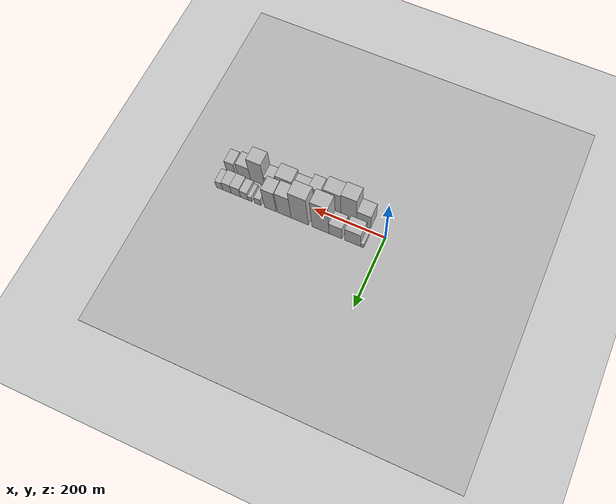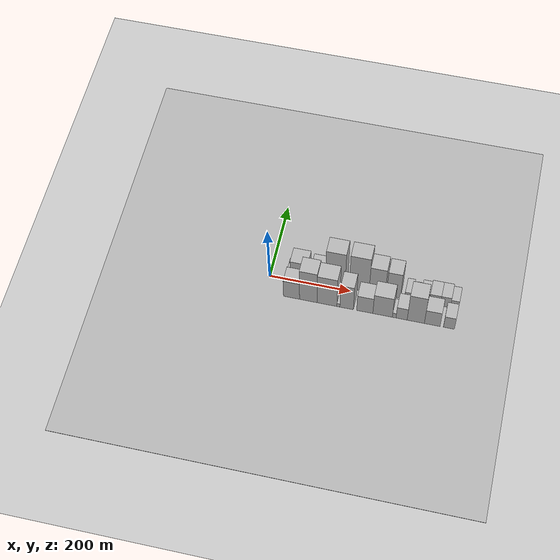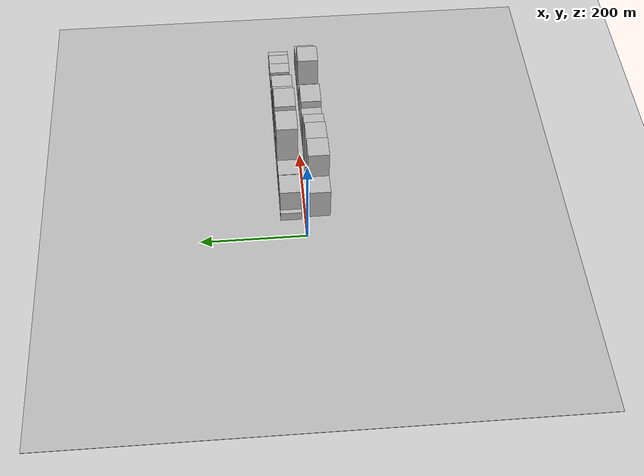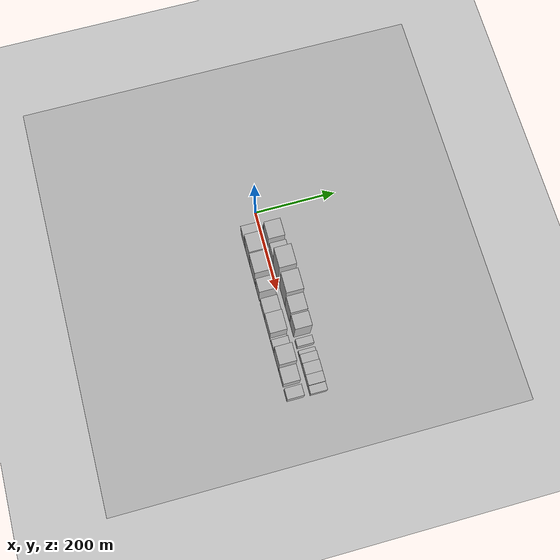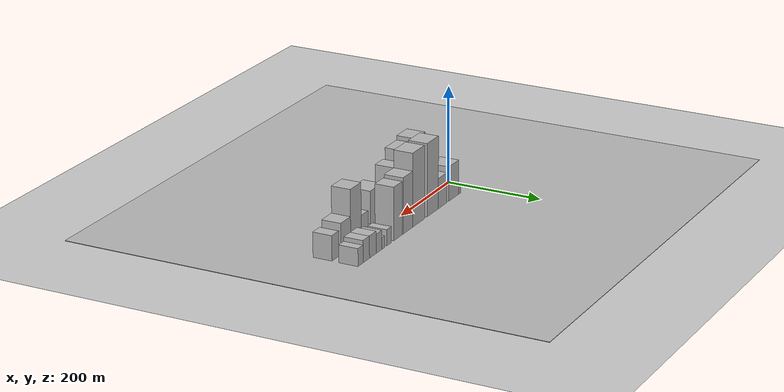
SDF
<?xml version="1.0" encoding="utf-8"?>

<sdf version="1.6">

   <world name="default">

      <gui fullscreen="0">

         <camera name="user_camera">

            <pose>-15 0 4.57585 0 0 0</pose>

            <view_controller>orbit</view_controller>

         </camera>

      </gui>

      <scene>

         <sky>

           <clouds>

             <speed>12</speed>

           </clouds>

         </sky>

         <ambient>0.4 0.4 0.4 1</ambient>

         <background>0.7 0.7 0.7 1</background>

         <shadows>1</shadows>

      </scene>

      <gravity>0 0 -9.8066</gravity>

      <magnetic_field>6e-06 2.3e-05 -4.2e-05</magnetic_field>

      <physics default="0" name="default_physics" type="ode">

         <ode>

            <solver>

               <type>quick</type>

               <iters>10</iters>

               <sor>1.0</sor>

               <use_dynamic_moi_rescaling>0</use_dynamic_moi_rescaling>

            </solver>

            <constraints>

               <cfm>0</cfm>

               <erp>0.2</erp>

               <contact_max_correcting_vel>100</contact_max_correcting_vel>

               <contact_surface_layer>0.001</contact_surface_layer>

            </constraints>

         </ode>

         <max_step_size>0.004</max_step_size>

         <real_time_factor>1</real_time_factor>

         <real_time_update_rate>250</real_time_update_rate>

      </physics>

      <light name="sun" type="directional">

         <cast_shadows>1</cast_shadows>

         <pose>0 0 10 0 0 0</pose>

         <diffuse>0.8 0.8 0.8 1</diffuse>

         <specular>0.2 0.2 0.2 1</specular>

         <attenuation>

            <range>1000</range>

            <constant>0.9</constant>

            <linear>0.01</linear>

            <quadratic>0.001</quadratic>

         </attenuation>

         <direction>-0.5 0.1 -0.9</direction>

      </light>

      <include>

         <name>ground_plane_1</name>

         <uri>model://HANNAS_ground_plane</uri>

         <pose>0 0 0  0 0 0</pose>

      </include>

      <include>

         <name>ground_plane_2</name>

         <uri>model://HANNAS_ground_plane</uri>

         <pose>100 0 0  0 0 0</pose>

      </include>

      <model name="building_1">

         <static>1</static>

         <pose frame="">44.5452 27.5000 0 0.000000 0.000000 1.570796</pose>

         <link name="link">

            <pose frame="">0 0 10.50 0 0 0</pose>

            <collision name="collision">

               <geometry>

                  <box>

                     <size>40.0000 9.0904 21.0000</size>

                  </box>

               </geometry>

               <max_contacts>10</max_contacts>

               <surface>

                  <contact>

                     <ode/>

                  </contact>

                  <bounce/>

                  <friction>

                     <torsional>

                        <ode/>

                     </torsional>

                     <ode/>

                  </friction>

               </surface>

            </collision>

            <visual name="visual">

               <cast_shadows>0</cast_shadows>

               <geometry>

                  <box>

                     <size>40.0000 9.0904 21.0000</size>

                  </box>

               </geometry>

               <material>

                  <script>

                     <uri>model://HANNAS_wall/materials/scripts</uri>

                     <uri>model://HANNAS_wall/materials/textures</uri>

                     <name>vrc/HANNAS_wall</name>

                  </script>

               </material>

            </visual>

            <self_collide>0</self_collide>

            <enable_wind>0</enable_wind>

            <kinematic>0</kinematic>

         </link>

      </model>

      <model name="building_2">

         <static>1</static>

         <pose frame="">70.5771 27.5000 0 0.000000 0.000000 1.570796</pose>

         <link name="link">

            <pose frame="">0 0 36.00 0 0 0</pose>

            <collision name="collision">

               <geometry>

                  <box>

                     <size>40.0000 42.9735 72.0000</size>

                  </box>

               </geometry>

               <max_contacts>10</max_contacts>

               <surface>

                  <contact>

                     <ode/>

                  </contact>

                  <bounce/>

                  <friction>

                     <torsional>

                        <ode/>

                     </torsional>

                     <ode/>

                  </friction>

               </surface>

            </collision>

            <visual name="visual">

               <cast_shadows>0</cast_shadows>

               <geometry>

                  <box>

                     <size>40.0000 42.9735 72.0000</size>

                  </box>

               </geometry>

               <material>

                  <script>

                     <uri>model://HANNAS_wall/materials/scripts</uri>

                     <uri>model://HANNAS_wall/materials/textures</uri>

                     <name>vrc/HANNAS_wall</name>

                  </script>

               </material>

            </visual>

            <self_collide>0</self_collide>

            <enable_wind>0</enable_wind>

            <kinematic>0</kinematic>

         </link>

      </model>

      <model name="building_3">

         <static>1</static>

         <pose frame="">118.1432 27.5000 0 0.000000 0.000000 1.570796</pose>

         <link name="link">

            <pose frame="">0 0 31.50 0 0 0</pose>

            <collision name="collision">

               <geometry>

                  <box>

                     <size>40.0000 36.1587 63.0000</size>

                  </box>

               </geometry>

               <max_contacts>10</max_contacts>

               <surface>

                  <contact>

                     <ode/>

                  </contact>

                  <bounce/>

                  <friction>

                     <torsional>

                        <ode/>

                     </torsional>

                     <ode/>

                  </friction>

               </surface>

            </collision>

            <visual name="visual">

               <cast_shadows>0</cast_shadows>

               <geometry>

                  <box>

                     <size>40.0000 36.1587 63.0000</size>

                  </box>

               </geometry>

               <material>

                  <script>

                     <uri>model://HANNAS_wall/materials/scripts</uri>

                     <uri>model://HANNAS_wall/materials/textures</uri>

                     <name>vrc/HANNAS_wall</name>

                  </script>

               </material>

            </visual>

            <self_collide>0</self_collide>

            <enable_wind>0</enable_wind>

            <kinematic>0</kinematic>

         </link>

      </model>

      <model name="building_4">

         <static>1</static>

         <pose frame="">160.0432 27.5000 0 0.000000 0.000000 1.570796</pose>

         <link name="link">

            <pose frame="">0 0 75.00 0 0 0</pose>

            <collision name="collision">

               <geometry>

                  <box>

                     <size>40.0000 47.6412 150.0000</size>

                  </box>

               </geometry>

               <max_contacts>10</max_contacts>

               <surface>

                  <contact>

                     <ode/>

                  </contact>

                  <bounce/>

                  <friction>

                     <torsional>

                        <ode/>

                     </torsional>

                     <ode/>

                  </friction>

               </surface>

            </collision>

            <visual name="visual">

               <cast_shadows>0</cast_shadows>

               <geometry>

                  <box>

                     <size>40.0000 47.6412 150.0000</size>

                  </box>

               </geometry>

               <material>

                  <script>

                     <uri>model://HANNAS_wall/materials/scripts</uri>

                     <uri>model://HANNAS_wall/materials/textures</uri>

                     <name>vrc/HANNAS_wall</name>

                  </script>

               </material>

            </visual>

            <self_collide>0</self_collide>

            <enable_wind>0</enable_wind>

            <kinematic>0</kinematic>

         </link>

      </model>

      <model name="building_5">

         <static>1</static>

         <pose frame="">218.1192 27.5000 0 0.000000 0.000000 1.570796</pose>

         <link name="link">

            <pose frame="">0 0 75.00 0 0 0</pose>

            <collision name="collision">

               <geometry>

                  <box>

                     <size>40.0000 48.5108 150.0000</size>

                  </box>

               </geometry>

               <max_contacts>10</max_contacts>

               <surface>

                  <contact>

                     <ode/>

                  </contact>

                  <bounce/>

                  <friction>

                     <torsional>

                        <ode/>

                     </torsional>

                     <ode/>

                  </friction>

               </surface>

            </collision>

            <visual name="visual">

               <cast_shadows>0</cast_shadows>

               <geometry>

                  <box>

                     <size>40.0000 48.5108 150.0000</size>

                  </box>

               </geometry>

               <material>

                  <script>

                     <uri>model://HANNAS_wall/materials/scripts</uri>

                     <uri>model://HANNAS_wall/materials/textures</uri>

                     <name>vrc/HANNAS_wall</name>

                  </script>

               </material>

            </visual>

            <self_collide>0</self_collide>

            <enable_wind>0</enable_wind>

            <kinematic>0</kinematic>

         </link>

      </model>

      <model name="building_6">

         <static>1</static>

         <pose frame="">262.0023 27.5000 0 0.000000 0.000000 1.570796</pose>

         <link name="link">

            <pose frame="">0 0 57.00 0 0 0</pose>

            <collision name="collision">

               <geometry>

                  <box>

                     <size>40.0000 39.2553 114.0000</size>

                  </box>

               </geometry>

               <max_contacts>10</max_contacts>

               <surface>

                  <contact>

                     <ode/>

                  </contact>

                  <bounce/>

                  <friction>

                     <torsional>

                        <ode/>

                     </torsional>

                     <ode/>

                  </friction>

               </surface>

            </collision>

            <visual name="visual">

               <cast_shadows>0</cast_shadows>

               <geometry>

                  <box>

                     <size>40.0000 39.2553 114.0000</size>

                  </box>

               </geometry>

               <material>

                  <script>

                     <uri>model://HANNAS_wall/materials/scripts</uri>

                     <uri>model://HANNAS_wall/materials/textures</uri>

                     <name>vrc/HANNAS_wall</name>

                  </script>

               </material>

            </visual>

            <self_collide>0</self_collide>

            <enable_wind>0</enable_wind>

            <kinematic>0</kinematic>

         </link>

      </model>

      <model name="building_7">

         <static>1</static>

         <pose frame="">301.5971 27.5000 0 0.000000 0.000000 1.570796</pose>

         <link name="link">

            <pose frame="">0 0 54.00 0 0 0</pose>

            <collision name="collision">

               <geometry>

                  <box>

                     <size>40.0000 33.9343 108.0000</size>

                  </box>

               </geometry>

               <max_contacts>10</max_contacts>

               <surface>

                  <contact>

                     <ode/>

                  </contact>

                  <bounce/>

                  <friction>

                     <torsional>

                        <ode/>

                     </torsional>

                     <ode/>

                  </friction>

               </surface>

            </collision>

            <visual name="visual">

               <cast_shadows>0</cast_shadows>

               <geometry>

                  <box>

                     <size>40.0000 33.9343 108.0000</size>

                  </box>

               </geometry>

               <material>

                  <script>

                     <uri>model://HANNAS_wall/materials/scripts</uri>

                     <uri>model://HANNAS_wall/materials/textures</uri>

                     <name>vrc/HANNAS_wall</name>

                  </script>

               </material>

            </visual>

            <self_collide>0</self_collide>

            <enable_wind>0</enable_wind>

            <kinematic>0</kinematic>

         </link>

      </model>

      <model name="building_8">

         <static>1</static>

         <pose frame="">337.7096 27.5000 0 0.000000 0.000000 1.570796</pose>

         <link name="link">

            <pose frame="">0 0 16.50 0 0 0</pose>

            <collision name="collision">

               <geometry>

                  <box>

                     <size>40.0000 18.2908 33.0000</size>

                  </box>

               </geometry>

               <max_contacts>10</max_contacts>

               <surface>

                  <contact>

                     <ode/>

                  </contact>

                  <bounce/>

                  <friction>

                     <torsional>

                        <ode/>

                     </torsional>

                     <ode/>

                  </friction>

               </surface>

            </collision>

            <visual name="visual">

               <cast_shadows>0</cast_shadows>

               <geometry>

                  <box>

                     <size>40.0000 18.2908 33.0000</size>

                  </box>

               </geometry>

               <material>

                  <script>

                     <uri>model://HANNAS_wall/materials/scripts</uri>

                     <uri>model://HANNAS_wall/materials/textures</uri>

                     <name>vrc/HANNAS_wall</name>

                  </script>

               </material>

            </visual>

            <self_collide>0</self_collide>

            <enable_wind>0</enable_wind>

            <kinematic>0</kinematic>

         </link>

      </model>

      <model name="building_9">

         <static>1</static>

         <pose frame="">360.4287 27.5000 0 0.000000 0.000000 1.570796</pose>

         <link name="link">

            <pose frame="">0 0 12.00 0 0 0</pose>

            <collision name="collision">

               <geometry>

                  <box>

                     <size>40.0000 11.1475 24.0000</size>

                  </box>

               </geometry>

               <max_contacts>10</max_contacts>

               <surface>

                  <contact>

                     <ode/>

                  </contact>

                  <bounce/>

                  <friction>

                     <torsional>

                        <ode/>

                     </torsional>

                     <ode/>

                  </friction>

               </surface>

            </collision>

            <visual name="visual">

               <cast_shadows>0</cast_shadows>

               <geometry>

                  <box>

                     <size>40.0000 11.1475 24.0000</size>

                  </box>

               </geometry>

               <material>

                  <script>

                     <uri>model://HANNAS_wall/materials/scripts</uri>

                     <uri>model://HANNAS_wall/materials/textures</uri>

                     <name>vrc/HANNAS_wall</name>

                  </script>

               </material>

            </visual>

            <self_collide>0</self_collide>

            <enable_wind>0</enable_wind>

            <kinematic>0</kinematic>

         </link>

      </model>

      <model name="building_10">

         <static>1</static>

         <pose frame="">376.8755 27.5000 0 0.000000 0.000000 1.570796</pose>

         <link name="link">

            <pose frame="">0 0 19.50 0 0 0</pose>

            <collision name="collision">

               <geometry>

                  <box>

                     <size>40.0000 21.7459 39.0000</size>

                  </box>

               </geometry>

               <max_contacts>10</max_contacts>

               <surface>

                  <contact>

                     <ode/>

                  </contact>

                  <bounce/>

                  <friction>

                     <torsional>

                        <ode/>

                     </torsional>

                     <ode/>

                  </friction>

               </surface>

            </collision>

            <visual name="visual">

               <cast_shadows>0</cast_shadows>

               <geometry>

                  <box>

                     <size>40.0000 21.7459 39.0000</size>

                  </box>

               </geometry>

               <material>

                  <script>

                     <uri>model://HANNAS_wall/materials/scripts</uri>

                     <uri>model://HANNAS_wall/materials/textures</uri>

                     <name>vrc/HANNAS_wall</name>

                  </script>

               </material>

            </visual>

            <self_collide>0</self_collide>

            <enable_wind>0</enable_wind>

            <kinematic>0</kinematic>

         </link>

      </model>

      <model name="building_11">

         <static>1</static>

         <pose frame="">401.1954 27.5000 0 0.000000 0.000000 1.570796</pose>

         <link name="link">

            <pose frame="">0 0 22.50 0 0 0</pose>

            <collision name="collision">

               <geometry>

                  <box>

                     <size>40.0000 26.8939 45.0000</size>

                  </box>

               </geometry>

               <max_contacts>10</max_contacts>

               <surface>

                  <contact>

                     <ode/>

                  </contact>

                  <bounce/>

                  <friction>

                     <torsional>

                        <ode/>

                     </torsional>

                     <ode/>

                  </friction>

               </surface>

            </collision>

            <visual name="visual">

               <cast_shadows>0</cast_shadows>

               <geometry>

                  <box>

                     <size>40.0000 26.8939 45.0000</size>

                  </box>

               </geometry>

               <material>

                  <script>

                     <uri>model://HANNAS_wall/materials/scripts</uri>

                     <uri>model://HANNAS_wall/materials/textures</uri>

                     <name>vrc/HANNAS_wall</name>

                  </script>

               </material>

            </visual>

            <self_collide>0</self_collide>

            <enable_wind>0</enable_wind>

            <kinematic>0</kinematic>

         </link>

      </model>

      <model name="building_12">

         <static>1</static>

         <pose frame="">426.8870 27.5000 0 0.000000 0.000000 1.570796</pose>

         <link name="link">

            <pose frame="">0 0 22.50 0 0 0</pose>

            <collision name="collision">

               <geometry>

                  <box>

                     <size>40.0000 24.4894 45.0000</size>

                  </box>

               </geometry>

               <max_contacts>10</max_contacts>

               <surface>

                  <contact>

                     <ode/>

                  </contact>

                  <bounce/>

                  <friction>

                     <torsional>

                        <ode/>

                     </torsional>

                     <ode/>

                  </friction>

               </surface>

            </collision>

            <visual name="visual">

               <cast_shadows>0</cast_shadows>

               <geometry>

                  <box>

                     <size>40.0000 24.4894 45.0000</size>

                  </box>

               </geometry>

               <material>

                  <script>

                     <uri>model://HANNAS_wall/materials/scripts</uri>

                     <uri>model://HANNAS_wall/materials/textures</uri>

                     <name>vrc/HANNAS_wall</name>

                  </script>

               </material>

            </visual>

            <self_collide>0</self_collide>

            <enable_wind>0</enable_wind>

            <kinematic>0</kinematic>

         </link>

      </model>

      <model name="building_13">

         <static>1</static>

         <pose frame="">448.7999 27.5000 0 0.000000 0.000000 1.570796</pose>

         <link name="link">

            <pose frame="">0 0 18.00 0 0 0</pose>

            <collision name="collision">

               <geometry>

                  <box>

                     <size>40.0000 19.3363 36.0000</size>

                  </box>

               </geometry>

               <max_contacts>10</max_contacts>

               <surface>

                  <contact>

                     <ode/>

                  </contact>

                  <bounce/>

                  <friction>

                     <torsional>

                        <ode/>

                     </torsional>

                     <ode/>

                  </friction>

               </surface>

            </collision>

            <visual name="visual">

               <cast_shadows>0</cast_shadows>

               <geometry>

                  <box>

                     <size>40.0000 19.3363 36.0000</size>

                  </box>

               </geometry>

               <material>

                  <script>

                     <uri>model://HANNAS_wall/materials/scripts</uri>

                     <uri>model://HANNAS_wall/materials/textures</uri>

                     <name>vrc/HANNAS_wall</name>

                  </script>

               </material>

            </visual>

            <self_collide>0</self_collide>

            <enable_wind>0</enable_wind>

            <kinematic>0</kinematic>

         </link>

      </model>

      <model name="building_14">

         <static>1</static>

         <pose frame="">64.6152 -27.5000 0 0.000000 0.000000 1.570796</pose>

         <link name="link">

            <pose frame="">0 0 36.00 0 0 0</pose>

            <collision name="collision">

               <geometry>

                  <box>

                     <size>40.0000 39.2304 72.0000</size>

                  </box>

               </geometry>

               <max_contacts>10</max_contacts>

               <surface>

                  <contact>

                     <ode/>

                  </contact>

                  <bounce/>

                  <friction>

                     <torsional>

                        <ode/>

                     </torsional>

                     <ode/>

                  </friction>

               </surface>

            </collision>

            <visual name="visual">

               <cast_shadows>0</cast_shadows>

               <geometry>

                  <box>

                     <size>40.0000 39.2304 72.0000</size>

                  </box>

               </geometry>

               <material>

                  <script>

                     <uri>model://HANNAS_wall/materials/scripts</uri>

                     <uri>model://HANNAS_wall/materials/textures</uri>

                     <name>vrc/HANNAS_wall</name>

                  </script>

               </material>

            </visual>

            <self_collide>0</self_collide>

            <enable_wind>0</enable_wind>

            <kinematic>0</kinematic>

         </link>

      </model>

      <model name="building_15">

         <static>1</static>

         <pose frame="">105.7762 -27.5000 0 0.000000 0.000000 1.570796</pose>

         <link name="link">

            <pose frame="">0 0 66.00 0 0 0</pose>

            <collision name="collision">

               <geometry>

                  <box>

                     <size>40.0000 43.0916 132.0000</size>

                  </box>

               </geometry>

               <max_contacts>10</max_contacts>

               <surface>

                  <contact>

                     <ode/>

                  </contact>

                  <bounce/>

                  <friction>

                     <torsional>

                        <ode/>

                     </torsional>

                     <ode/>

                  </friction>

               </surface>

            </collision>

            <visual name="visual">

               <cast_shadows>0</cast_shadows>

               <geometry>

                  <box>

                     <size>40.0000 43.0916 132.0000</size>

                  </box>

               </geometry>

               <material>

                  <script>

                     <uri>model://HANNAS_wall/materials/scripts</uri>

                     <uri>model://HANNAS_wall/materials/textures</uri>

                     <name>vrc/HANNAS_wall</name>

                  </script>

               </material>

            </visual>

            <self_collide>0</self_collide>

            <enable_wind>0</enable_wind>

            <kinematic>0</kinematic>

         </link>

      </model>

      <model name="building_16">

         <static>1</static>

         <pose frame="">151.2826 -27.5000 0 0.000000 0.000000 1.570796</pose>

         <link name="link">

            <pose frame="">0 0 61.50 0 0 0</pose>

            <collision name="collision">

               <geometry>

                  <box>

                     <size>40.0000 47.9210 123.0000</size>

                  </box>

               </geometry>

               <max_contacts>10</max_contacts>

               <surface>

                  <contact>

                     <ode/>

                  </contact>

                  <bounce/>

                  <friction>

                     <torsional>

                        <ode/>

                     </torsional>

                     <ode/>

                  </friction>

               </surface>

            </collision>

            <visual name="visual">

               <cast_shadows>0</cast_shadows>

               <geometry>

                  <box>

                     <size>40.0000 47.9210 123.0000</size>

                  </box>

               </geometry>

               <material>

                  <script>

                     <uri>model://HANNAS_wall/materials/scripts</uri>

                     <uri>model://HANNAS_wall/materials/textures</uri>

                     <name>vrc/HANNAS_wall</name>

                  </script>

               </material>

            </visual>

            <self_collide>0</self_collide>

            <enable_wind>0</enable_wind>

            <kinematic>0</kinematic>

         </link>

      </model>

      <model name="building_17">

         <static>1</static>

         <pose frame="">178.9516 -27.5000 0 0.000000 0.000000 1.570796</pose>

         <link name="link">

            <pose frame="">0 0 7.50 0 0 0</pose>

            <collision name="collision">

               <geometry>

                  <box>

                     <size>40.0000 7.4171 15.0000</size>

                  </box>

               </geometry>

               <max_contacts>10</max_contacts>

               <surface>

                  <contact>

                     <ode/>

                  </contact>

                  <bounce/>

                  <friction>

                     <torsional>

                        <ode/>

                     </torsional>

                     <ode/>

                  </friction>

               </surface>

            </collision>

            <visual name="visual">

               <cast_shadows>0</cast_shadows>

               <geometry>

                  <box>

                     <size>40.0000 7.4171 15.0000</size>

                  </box>

               </geometry>

               <material>

                  <script>

                     <uri>model://HANNAS_wall/materials/scripts</uri>

                     <uri>model://HANNAS_wall/materials/textures</uri>

                     <name>vrc/HANNAS_wall</name>

                  </script>

               </material>

            </visual>

            <self_collide>0</self_collide>

            <enable_wind>0</enable_wind>

            <kinematic>0</kinematic>

         </link>

      </model>

      <model name="building_18">

         <static>1</static>

         <pose frame="">198.9719 -27.5000 0 0.000000 0.000000 1.570796</pose>

         <link name="link">

            <pose frame="">0 0 51.00 0 0 0</pose>

            <collision name="collision">

               <geometry>

                  <box>

                     <size>40.0000 32.6235 102.0000</size>

                  </box>

               </geometry>

               <max_contacts>10</max_contacts>

               <surface>

                  <contact>

                     <ode/>

                  </contact>

                  <bounce/>

                  <friction>

                     <torsional>

                        <ode/>

                     </torsional>

                     <ode/>

                  </friction>

               </surface>

            </collision>

            <visual name="visual">

               <cast_shadows>0</cast_shadows>

               <geometry>

                  <box>

                     <size>40.0000 32.6235 102.0000</size>

                  </box>

               </geometry>

               <material>

                  <script>

                     <uri>model://HANNAS_wall/materials/scripts</uri>

                     <uri>model://HANNAS_wall/materials/textures</uri>

                     <name>vrc/HANNAS_wall</name>

                  </script>

               </material>

            </visual>

            <self_collide>0</self_collide>

            <enable_wind>0</enable_wind>

            <kinematic>0</kinematic>

         </link>

      </model>

      <model name="building_19">

         <static>1</static>

         <pose frame="">242.8367 -27.5000 0 0.000000 0.000000 1.570796</pose>

         <link name="link">

            <pose frame="">0 0 34.50 0 0 0</pose>

            <collision name="collision">

               <geometry>

                  <box>

                     <size>40.0000 39.1060 69.0000</size>

                  </box>

               </geometry>

               <max_contacts>10</max_contacts>

               <surface>

                  <contact>

                     <ode/>

                  </contact>

                  <bounce/>

                  <friction>

                     <torsional>

                        <ode/>

                     </torsional>

                     <ode/>

                  </friction>

               </surface>

            </collision>

            <visual name="visual">

               <cast_shadows>0</cast_shadows>

               <geometry>

                  <box>

                     <size>40.0000 39.1060 69.0000</size>

                  </box>

               </geometry>

               <material>

                  <script>

                     <uri>model://HANNAS_wall/materials/scripts</uri>

                     <uri>model://HANNAS_wall/materials/textures</uri>

                     <name>vrc/HANNAS_wall</name>

                  </script>

               </material>

            </visual>

            <self_collide>0</self_collide>

            <enable_wind>0</enable_wind>

            <kinematic>0</kinematic>

         </link>

      </model>

      <model name="building_20">

         <static>1</static>

         <pose frame="">285.9018 -27.5000 0 0.000000 0.000000 1.570796</pose>

         <link name="link">

            <pose frame="">0 0 43.50 0 0 0</pose>

            <collision name="collision">

               <geometry>

                  <box>

                     <size>40.0000 47.0242 87.0000</size>

                  </box>

               </geometry>

               <max_contacts>10</max_contacts>

               <surface>

                  <contact>

                     <ode/>

                  </contact>

                  <bounce/>

                  <friction>

                     <torsional>

                        <ode/>

                     </torsional>

                     <ode/>

                  </friction>

               </surface>

            </collision>

            <visual name="visual">

               <cast_shadows>0</cast_shadows>

               <geometry>

                  <box>

                     <size>40.0000 47.0242 87.0000</size>

                  </box>

               </geometry>

               <material>

                  <script>

                     <uri>model://HANNAS_wall/materials/scripts</uri>

                     <uri>model://HANNAS_wall/materials/textures</uri>

                     <name>vrc/HANNAS_wall</name>

                  </script>

               </material>

            </visual>

            <self_collide>0</self_collide>

            <enable_wind>0</enable_wind>

            <kinematic>0</kinematic>

         </link>

      </model>

      <model name="building_21">

         <static>1</static>

         <pose frame="">313.7958 -27.5000 0 0.000000 0.000000 1.570796</pose>

         <link name="link">

            <pose frame="">0 0 10.50 0 0 0</pose>

            <collision name="collision">

               <geometry>

                  <box>

                     <size>40.0000 8.7639 21.0000</size>

                  </box>

               </geometry>

               <max_contacts>10</max_contacts>

               <surface>

                  <contact>

                     <ode/>

                  </contact>

                  <bounce/>

                  <friction>

                     <torsional>

                        <ode/>

                     </torsional>

                     <ode/>

                  </friction>

               </surface>

            </collision>

            <visual name="visual">

               <cast_shadows>0</cast_shadows>

               <geometry>

                  <box>

                     <size>40.0000 8.7639 21.0000</size>

                  </box>

               </geometry>

               <material>

                  <script>

                     <uri>model://HANNAS_wall/materials/scripts</uri>

                     <uri>model://HANNAS_wall/materials/textures</uri>

                     <name>vrc/HANNAS_wall</name>

                  </script>

               </material>

            </visual>

            <self_collide>0</self_collide>

            <enable_wind>0</enable_wind>

            <kinematic>0</kinematic>

         </link>

      </model>

      <model name="building_22">

         <static>1</static>

         <pose frame="">331.5416 -27.5000 0 0.000000 0.000000 1.570796</pose>

         <link name="link">

            <pose frame="">0 0 25.50 0 0 0</pose>

            <collision name="collision">

               <geometry>

                  <box>

                     <size>40.0000 26.7277 51.0000</size>

                  </box>

               </geometry>

               <max_contacts>10</max_contacts>

               <surface>

                  <contact>

                     <ode/>

                  </contact>

                  <bounce/>

                  <friction>

                     <torsional>

                        <ode/>

                     </torsional>

                     <ode/>

                  </friction>

               </surface>

            </collision>

            <visual name="visual">

               <cast_shadows>0</cast_shadows>

               <geometry>

                  <box>

                     <size>40.0000 26.7277 51.0000</size>

                  </box>

               </geometry>

               <material>

                  <script>

                     <uri>model://HANNAS_wall/materials/scripts</uri>

                     <uri>model://HANNAS_wall/materials/textures</uri>

                     <name>vrc/HANNAS_wall</name>

                  </script>

               </material>

            </visual>

            <self_collide>0</self_collide>

            <enable_wind>0</enable_wind>

            <kinematic>0</kinematic>

         </link>

      </model>

      <model name="building_23">

         <static>1</static>

         <pose frame="">365.5544 -27.5000 0 0.000000 0.000000 1.570796</pose>

         <link name="link">

            <pose frame="">0 0 58.50 0 0 0</pose>

            <collision name="collision">

               <geometry>

                  <box>

                     <size>40.0000 41.2978 117.0000</size>

                  </box>

               </geometry>

               <max_contacts>10</max_contacts>

               <surface>

                  <contact>

                     <ode/>

                  </contact>

                  <bounce/>

                  <friction>

                     <torsional>

                        <ode/>

                     </torsional>

                     <ode/>

                  </friction>

               </surface>

            </collision>

            <visual name="visual">

               <cast_shadows>0</cast_shadows>

               <geometry>

                  <box>

                     <size>40.0000 41.2978 117.0000</size>

                  </box>

               </geometry>

               <material>

                  <script>

                     <uri>model://HANNAS_wall/materials/scripts</uri>

                     <uri>model://HANNAS_wall/materials/textures</uri>

                     <name>vrc/HANNAS_wall</name>

                  </script>

               </material>

            </visual>

            <self_collide>0</self_collide>

            <enable_wind>0</enable_wind>

            <kinematic>0</kinematic>

         </link>

      </model>

      <model name="building_24">

         <static>1</static>

         <pose frame="">404.9177 -27.5000 0 0.000000 0.000000 1.570796</pose>

         <link name="link">

            <pose frame="">0 0 31.50 0 0 0</pose>

            <collision name="collision">

               <geometry>

                  <box>

                     <size>40.0000 37.4288 63.0000</size>

                  </box>

               </geometry>

               <max_contacts>10</max_contacts>

               <surface>

                  <contact>

                     <ode/>

                  </contact>

                  <bounce/>

                  <friction>

                     <torsional>

                        <ode/>

                     </torsional>

                     <ode/>

                  </friction>

               </surface>

            </collision>

            <visual name="visual">

               <cast_shadows>0</cast_shadows>

               <geometry>

                  <box>

                     <size>40.0000 37.4288 63.0000</size>

                  </box>

               </geometry>

               <material>

                  <script>

                     <uri>model://HANNAS_wall/materials/scripts</uri>

                     <uri>model://HANNAS_wall/materials/textures</uri>

                     <name>vrc/HANNAS_wall</name>

                  </script>

               </material>

            </visual>

            <self_collide>0</self_collide>

            <enable_wind>0</enable_wind>

            <kinematic>0</kinematic>

         </link>

      </model>

      <model name="building_25">

         <static>1</static>

         <pose frame="">444.6998 -27.5000 0 0.000000 0.000000 1.570796</pose>

         <link name="link">

            <pose frame="">0 0 25.50 0 0 0</pose>

            <collision name="collision">

               <geometry>

                  <box>

                     <size>40.0000 26.1354 51.0000</size>

                  </box>

               </geometry>

               <max_contacts>10</max_contacts>

               <surface>

                  <contact>

                     <ode/>

                  </contact>

                  <bounce/>

                  <friction>

                     <torsional>

                        <ode/>

                     </torsional>

                     <ode/>

                  </friction>

               </surface>

            </collision>

            <visual name="visual">

               <cast_shadows>0</cast_shadows>

               <geometry>

                  <box>

                     <size>40.0000 26.1354 51.0000</size>

                  </box>

               </geometry>

               <material>

                  <script>

                     <uri>model://HANNAS_wall/materials/scripts</uri>

                     <uri>model://HANNAS_wall/materials/textures</uri>

                     <name>vrc/HANNAS_wall</name>

                  </script>

               </material>

            </visual>

            <self_collide>0</self_collide>

            <enable_wind>0</enable_wind>

            <kinematic>0</kinematic>

         </link>

      </model>

   </world>

</sdf>

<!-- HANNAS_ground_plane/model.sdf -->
<sdf version="1.4">
<model name="HANNAS_ground_plane">
  <static>true</static>
    <link name="link">
      <collision name="collision">
        <geometry>
          <plane>
            <normal>0 0 1</normal>
            <size>1000 1000</size>
          </plane>
        </geometry>
        <surface>
          <friction>
            <ode>
              <mu>100</mu>
              <mu2>50</mu2>
            </ode>
          </friction>
        </surface>
      </collision>
      <visual name="visual">
        <cast_shadows>false</cast_shadows>
        <geometry>
          <plane>
            <normal>0 0 1</normal>
            <size>1000 1000</size>
          </plane>
        </geometry>
        <material>
          <script>
            <uri>model://HANNAS_ground_plane/materials/scripts/HANNAS_ground_plane.material</uri>
	    <uri>model://HANNAS_ground_plane/materials/textures</uri>
            <name>HANNASGroundPlane/Image</name>
          </script>
        </material>
      </visual>
    </link>
  </model>
</sdf>
